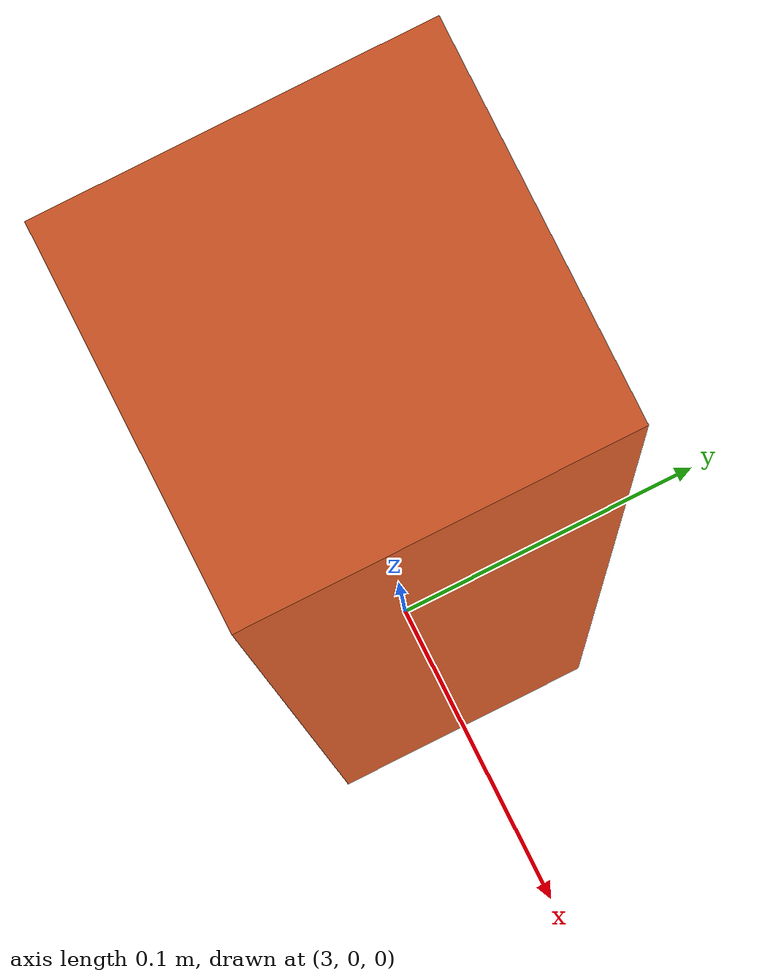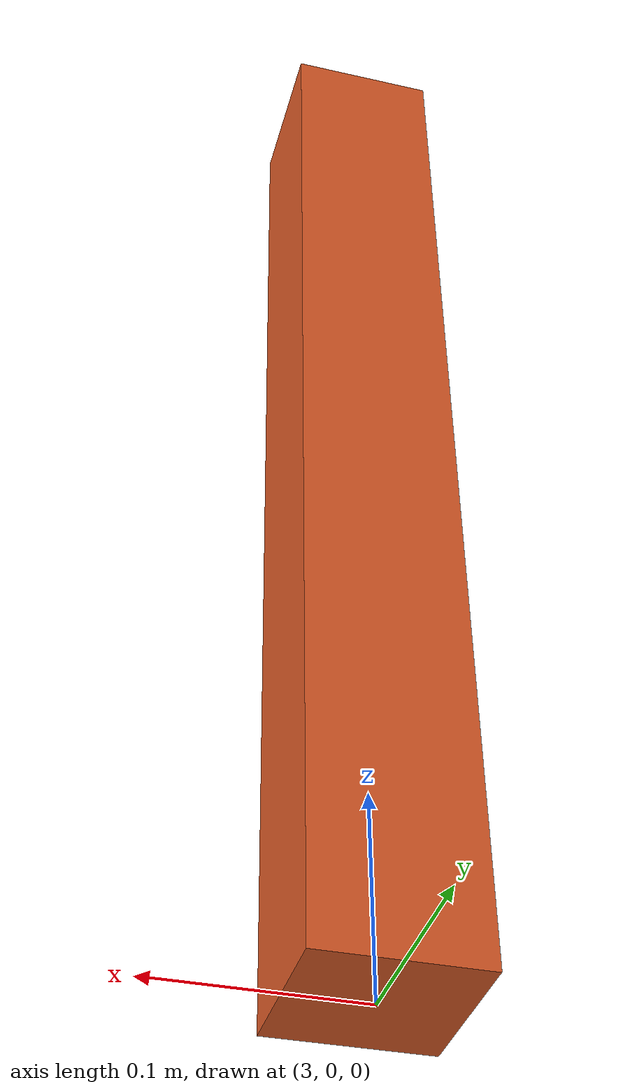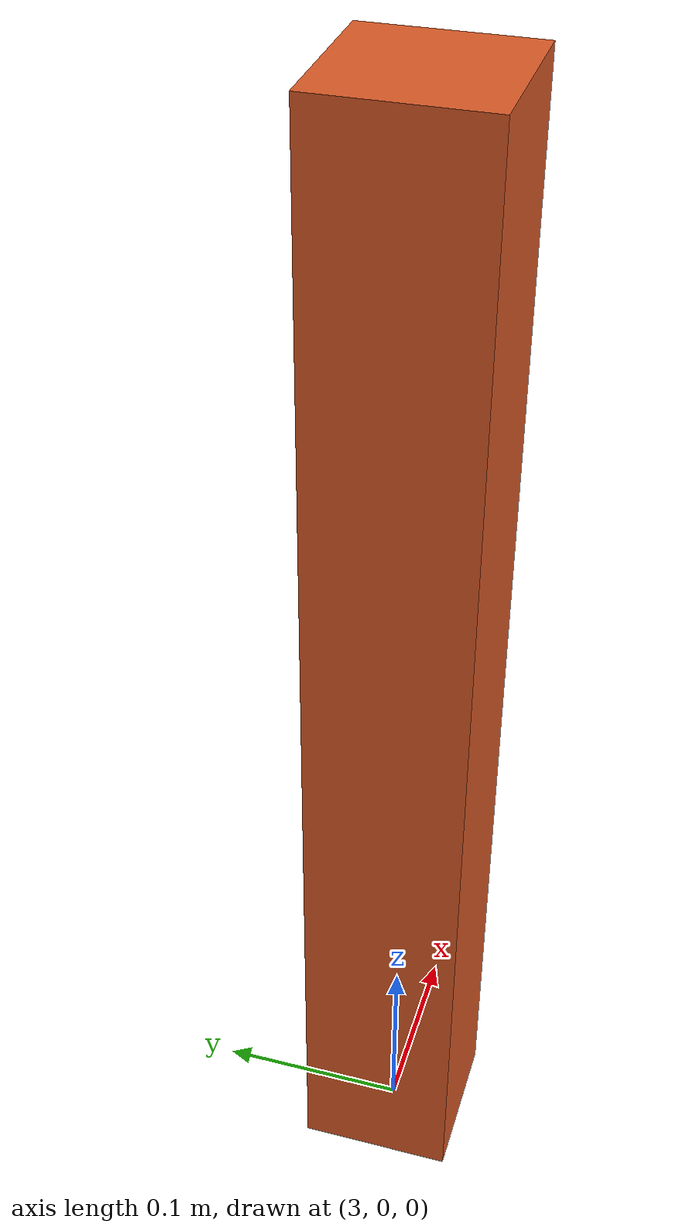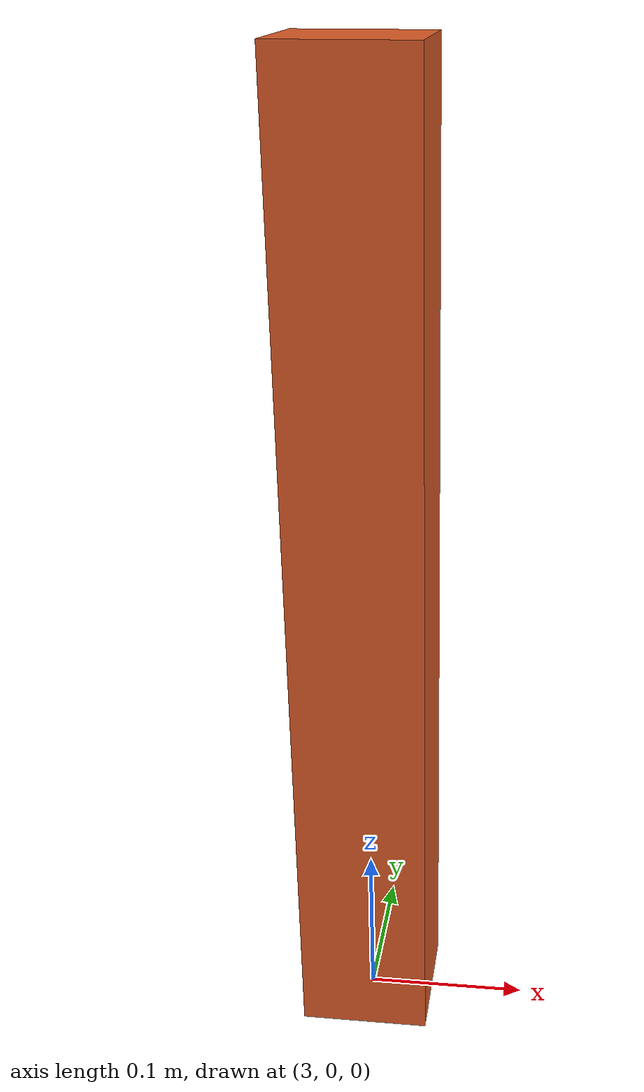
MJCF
<mujoco model="cocarry_obstacle">
  <worldbody>
    <body name="obstacle" mocap="true" pos="3 0 0.30">
      <geom name="obstacle_geom" type="box" size="0.04 0.04 0.30"
            contype="1" conaffinity="1" condim="3" friction="1.0 0.02 0.01"
            rgba="0.85 0.35 0.15 1" group="0"/>
    </body>
  </worldbody>
</mujoco>
